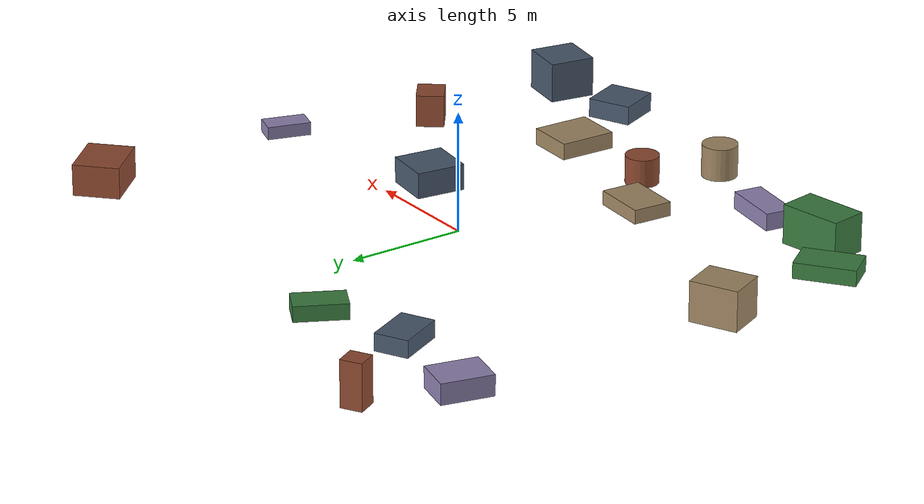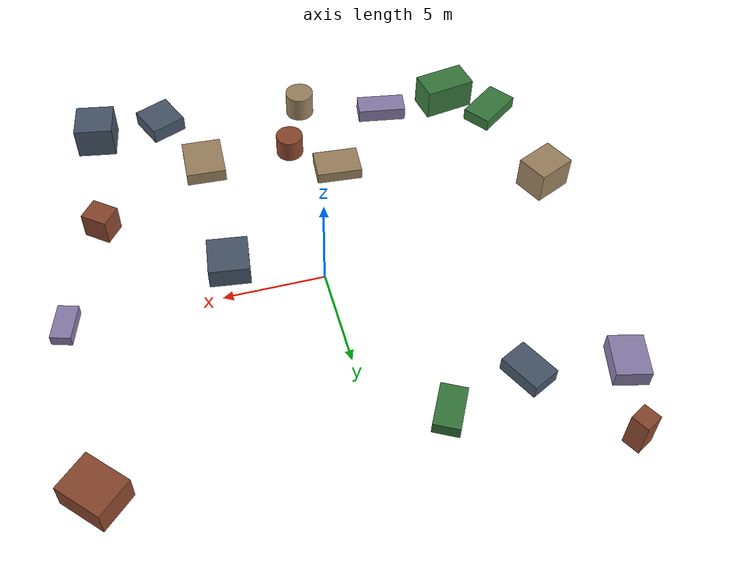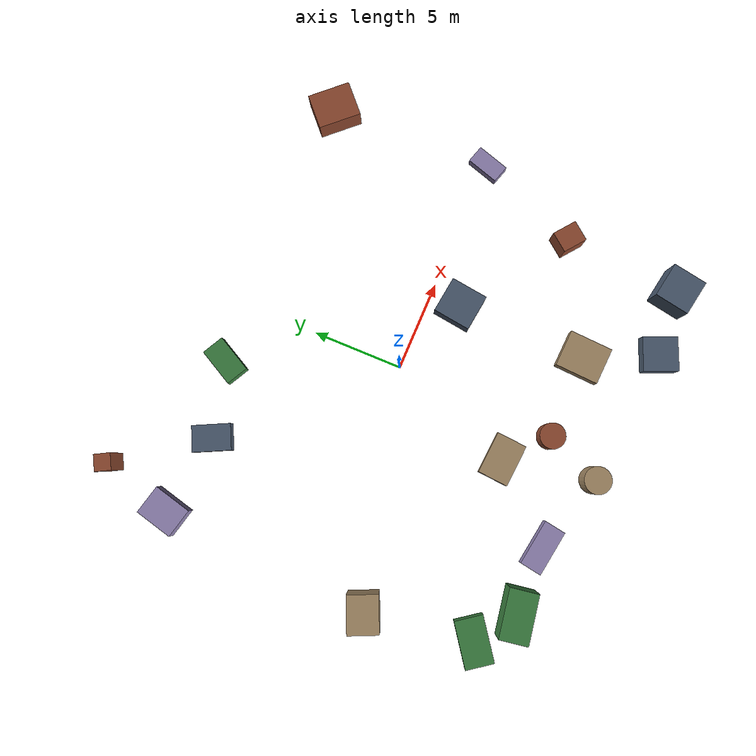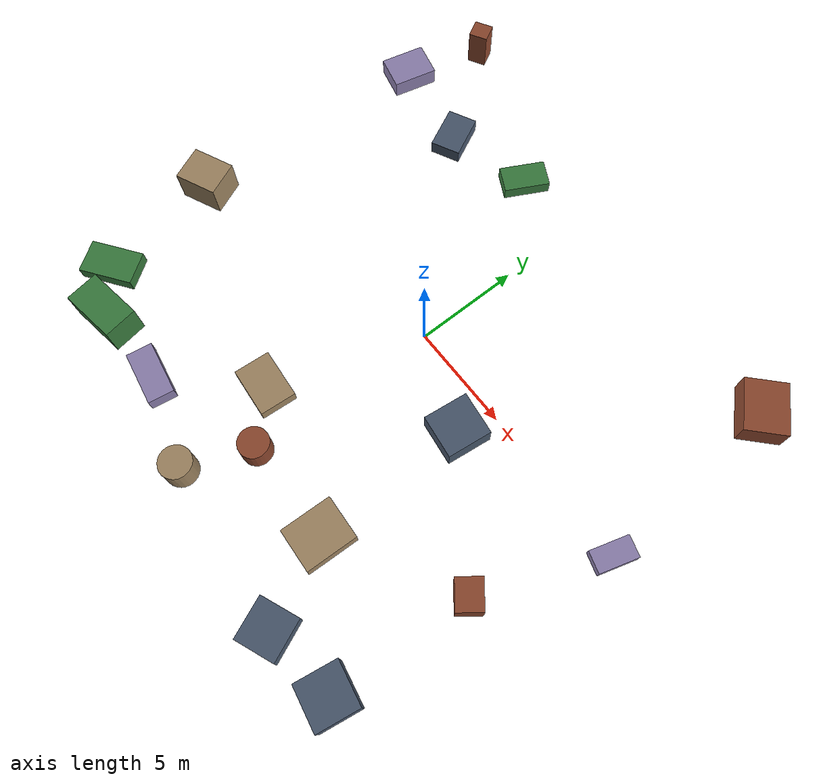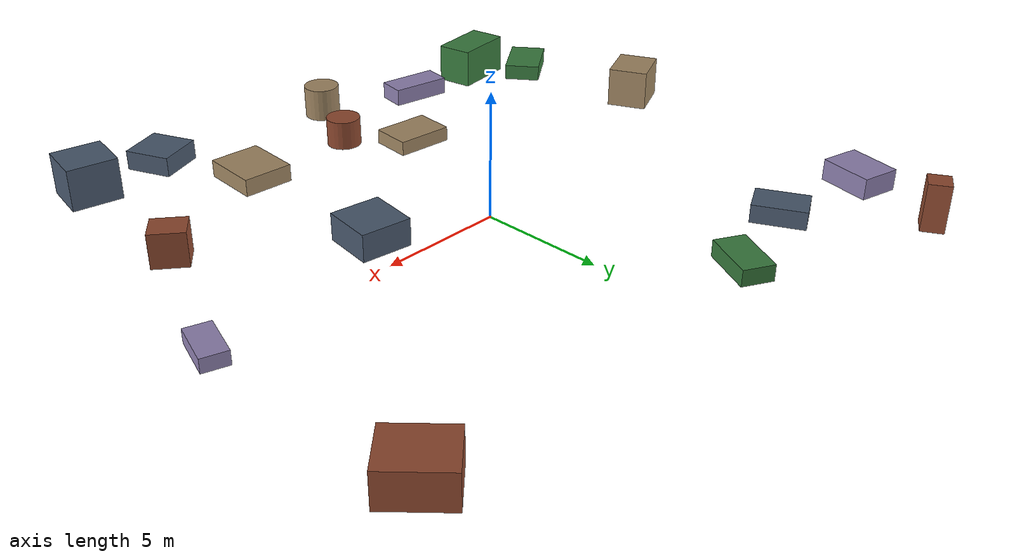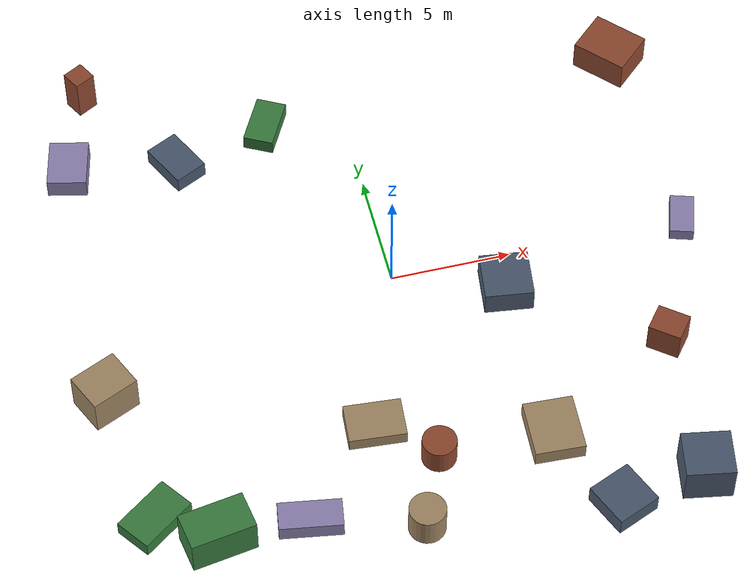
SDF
<sdf version="1.10">
 <world name="robotx_task1_uav_view">
  <gravity>0 0 -9.81</gravity>
  <physics name="physics" type="ode">
   <max_step_size>0.002</max_step_size>
   <real_time_factor>1.0</real_time_factor>
  </physics>
  <scene>
   <ambient>0.20 0.19 0.17 1.0</ambient>
   <background>0.45 0.48 0.42 1.0</background>
   <shadows>true</shadows>
   <grid>false</grid>
  </scene>
  <light name="sun" type="directional">
   <pose>0 0 300 0 0 0</pose>
   <diffuse>0.60 0.58 0.52 1.0</diffuse>
   <specular>0.30 0.35 0.28 1.0</specular>
   <direction>0.22 -0.10 -1.0</direction>
   <attenuation>
    <range>2500</range>
    <constant>0.85</constant>
    <linear>0.001</linear>
    <quadratic>0.00005</quadratic>
   </attenuation>
  </light>
  <plugin filename="gz-sim-physics-system" name="gz::sim::systems::Physics"/>
  <plugin filename="gz-sim-user-commands-system" name="gz::sim::systems::UserCommands"/>
  <plugin filename="gz-sim-scene-broadcaster-system" name="gz::sim::systems::SceneBroadcaster"/>
  <plugin filename="gz-sim-sensors-system" name="gz::sim::systems::Sensors">
   <render_engine>ogre2</render_engine>
  </plugin>
  <model name="scene_clutter_box_000">
   <static>true</static>
   <pose>-2.448 -6.957 0.320 0 0 3.063451</pose>
   <link name="link">
    <visual name="v">
     <geometry><box><size>2.331 1.673 0.599</size></box></geometry>
     <material><ambient>0.45 0.38 0.32 1.0</ambient><diffuse>0.62 0.52 0.38 1.0</diffuse></material>
    </visual>
   </link>
  </model>
  <model name="scene_clutter_box_001">
   <static>true</static>
   <pose>6.064 -12.675 0.422 0 0 -1.173054</pose>
   <link name="link">
    <visual name="v">
     <geometry><box><size>1.912 1.871 0.804</size></box></geometry>
     <material><ambient>0.18 0.22 0.28 1.0</ambient><diffuse>0.28 0.34 0.42 1.0</diffuse></material>
    </visual>
   </link>
  </model>
  <model name="scene_clutter_box_002">
   <static>true</static>
   <pose>-10.667 12.126 0.982 0 0 -2.636904</pose>
   <link name="link">
    <visual name="v">
     <geometry><box><size>0.903 0.870 1.924</size></box></geometry>
     <material><ambient>0.35 0.16 0.12 1.0</ambient><diffuse>0.55 0.28 0.18 1.0</diffuse></material>
    </visual>
   </link>
  </model>
  <model name="scene_clutter_box_003">
   <static>true</static>
   <pose>-3.360 8.818 0.348 0 0 1.081613</pose>
   <link name="link">
    <visual name="v">
     <geometry><box><size>2.172 1.264 0.657</size></box></geometry>
     <material><ambient>0.12 0.30 0.14 1.0</ambient><diffuse>0.22 0.48 0.24 1.0</diffuse></material>
    </visual>
   </link>
  </model>
  <model name="scene_clutter_box_004">
   <static>true</static>
   <pose>-11.898 8.451 0.453 0 0 -0.236519</pose>
   <link name="link">
    <visual name="v">
     <geometry><box><size>1.642 2.133 0.867</size></box></geometry>
     <material><ambient>0.40 0.35 0.50 1.0</ambient><diffuse>0.55 0.50 0.68 1.0</diffuse></material>
    </visual>
   </link>
  </model>
  <model name="scene_clutter_box_005">
   <static>true</static>
   <pose>-12.525 -3.247 0.856 0 0 0.424365</pose>
   <link name="link">
    <visual name="v">
     <geometry><box><size>2.019 1.665 1.671</size></box></geometry>
     <material><ambient>0.45 0.38 0.32 1.0</ambient><diffuse>0.62 0.52 0.38 1.0</diffuse></material>
    </visual>
   </link>
  </model>
  <model name="scene_clutter_box_006">
   <static>true</static>
   <pose>4.370 -1.709 0.565 0 0 -0.129992</pose>
   <link name="link">
    <visual name="v">
     <geometry><box><size>2.007 2.073 1.090</size></box></geometry>
     <material><ambient>0.18 0.22 0.28 1.0</ambient><diffuse>0.28 0.34 0.42 1.0</diffuse></material>
    </visual>
   </link>
  </model>
  <model name="scene_clutter_box_007">
   <static>true</static>
   <pose>11.945 8.973 0.681 0 0 2.317862</pose>
   <link name="link">
    <visual name="v">
     <geometry><box><size>2.369 1.940 1.321</size></box></geometry>
     <material><ambient>0.35 0.16 0.12 1.0</ambient><diffuse>0.55 0.28 0.18 1.0</diffuse></material>
    </visual>
   </link>
  </model>
  <model name="scene_clutter_box_008">
   <static>true</static>
   <pose>-11.730 -9.118 0.353 0 0 -0.945136</pose>
   <link name="link">
    <visual name="v">
     <geometry><box><size>1.554 2.517 0.665</size></box></geometry>
     <material><ambient>0.12 0.30 0.14 1.0</ambient><diffuse>0.22 0.48 0.24 1.0</diffuse></material>
    </visual>
   </link>
  </model>
  <model name="scene_clutter_box_009">
   <static>true</static>
   <pose>-5.913 -10.618 0.382 0 0 -0.158281</pose>
   <link name="link">
    <visual name="v">
     <geometry><box><size>2.532 1.191 0.725</size></box></geometry>
     <material><ambient>0.40 0.35 0.50 1.0</ambient><diffuse>0.55 0.50 0.68 1.0</diffuse></material>
    </visual>
   </link>
  </model>
  <model name="scene_clutter_cyl_010">
   <static>true</static>
   <pose>-1.581 -11.871 0.734 0 0 0.429440</pose>
   <link name="link">
    <visual name="v">
     <geometry><cylinder><radius>0.740</radius><length>1.369</length></cylinder></geometry>
     <material><ambient>0.45 0.38 0.32 1.0</ambient><diffuse>0.62 0.52 0.38 1.0</diffuse></material>
    </visual>
   </link>
  </model>
  <model name="scene_clutter_box_011">
   <static>true</static>
   <pose>-7.416 7.748 0.385 0 0 -2.684281</pose>
   <link name="link">
    <visual name="v">
     <geometry><box><size>1.427 2.079 0.730</size></box></geometry>
     <material><ambient>0.18 0.22 0.28 1.0</ambient><diffuse>0.28 0.34 0.42 1.0</diffuse></material>
    </visual>
   </link>
  </model>
  <model name="scene_clutter_box_012">
   <static>true</static>
   <pose>10.020 -5.758 0.707 0 0 2.476462</pose>
   <link name="link">
    <visual name="v">
     <geometry><box><size>1.366 1.169 1.374</size></box></geometry>
     <material><ambient>0.35 0.16 0.12 1.0</ambient><diffuse>0.55 0.28 0.18 1.0</diffuse></material>
    </visual>
   </link>
  </model>
  <model name="scene_clutter_box_013">
   <static>true</static>
   <pose>-9.540 -10.591 0.846 0 0 0.160157</pose>
   <link name="link">
    <visual name="v">
     <geometry><box><size>2.659 1.568 1.652</size></box></geometry>
     <material><ambient>0.12 0.30 0.14 1.0</ambient><diffuse>0.22 0.48 0.24 1.0</diffuse></material>
    </visual>
   </link>
  </model>
  <model name="scene_clutter_box_014">
   <static>true</static>
   <pose>12.399 -0.095 0.294 0 0 1.268659</pose>
   <link name="link">
    <visual name="v">
     <geometry><box><size>1.840 0.993 0.548</size></box></geometry>
     <material><ambient>0.40 0.35 0.50 1.0</ambient><diffuse>0.55 0.50 0.68 1.0</diffuse></material>
    </visual>
   </link>
  </model>
  <model name="scene_clutter_box_015">
   <static>true</static>
   <pose>4.320 -8.954 0.372 0 0 -1.620073</pose>
   <link name="link">
    <visual name="v">
     <geometry><box><size>2.398 2.035 0.704</size></box></geometry>
     <material><ambient>0.45 0.38 0.32 1.0</ambient><diffuse>0.62 0.52 0.38 1.0</diffuse></material>
    </visual>
   </link>
  </model>
  <model name="scene_clutter_box_016">
   <static>true</static>
   <pose>9.539 -12.233 0.866 0 0 2.966405</pose>
   <link name="link">
    <visual name="v">
     <geometry><box><size>1.968 1.924 1.692</size></box></geometry>
     <material><ambient>0.18 0.22 0.28 1.0</ambient><diffuse>0.28 0.34 0.42 1.0</diffuse></material>
    </visual>
   </link>
  </model>
  <model name="scene_clutter_cyl_017">
   <static>true</static>
   <pose>-0.324 -8.879 0.642 0 0 2.115189</pose>
   <link name="link">
    <visual name="v">
     <geometry><cylinder><radius>0.701</radius><length>1.184</length></cylinder></geometry>
     <material><ambient>0.35 0.16 0.12 1.0</ambient><diffuse>0.55 0.28 0.18 1.0</diffuse></material>
    </visual>
   </link>
  </model>
  <model name="uav_dataset_camera">
   <static>false</static>
   <pose>0 0 26 0 0 0</pose>
   <plugin filename="librobotx_overhead_motion_plugin.dylib" name="robotx::OverheadMotionPlugin">
    <radius_x_m>12.21324</radius_x_m>
    <radius_y_m>10.26843</radius_y_m>
    <angular_speed_rad_s>0.057259</angular_speed_rad_s>
    <phase_rad>1.541628</phase_rad>
    <z_wobble_m>0.10528</z_wobble_m>
    <z_wobble_hz>0.06548</z_wobble_hz>
    <z_wobble_phase_rad>0.459419</z_wobble_phase_rad>
   </plugin>
   <link name="camera_link">
    <gravity>false</gravity>
    <sensor name="top_down_rgb" type="camera">
     <always_on>true</always_on>
     <update_rate>20</update_rate>
     <pose>0 0 0 0 1.57079632679 0</pose>
     <camera>
      <horizontal_fov>1.05</horizontal_fov>
      <image><width>1920</width><height>1080</height><format>R8G8B8</format></image>
      <clip><near>0.2</near><far>600</far></clip>
     </camera>
     <topic>/robotx/uav/camera/image_raw</topic>
     <visualize>true</visualize>
    </sensor>
   </link>
  </model>
 </world>
</sdf>
